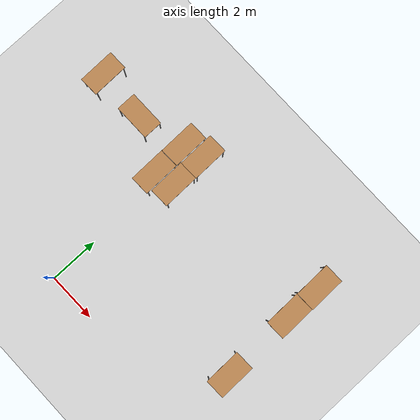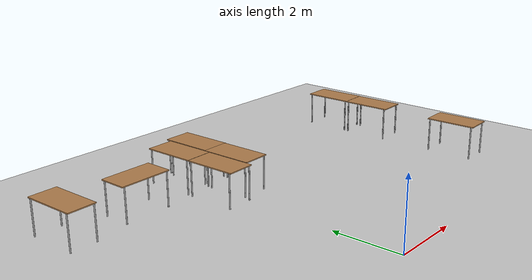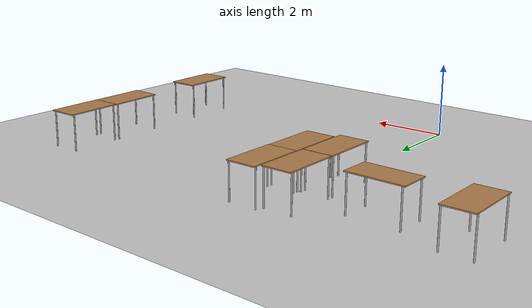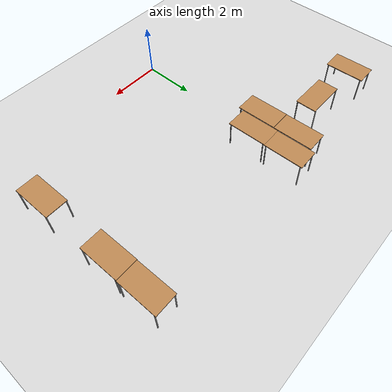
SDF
<sdf version="1.7">
 <world name="default">
  <model name="ground_plane">
   <static>1</static>
   <link name="link">
    <collision name="collision">
     <geometry><plane><normal>0 0 1</normal><size>100 100</size></plane></geometry>
     <surface>
      <contact><collide_bitmask>65535</collide_bitmask></contact>
      <friction><ode><mu>100</mu><mu2>50</mu2></ode></friction>
     </surface>
    </collision>
    <visual name="visual">
     <cast_shadows>0</cast_shadows>
     <geometry><plane><normal>0 0 1</normal><size>100 100</size></plane></geometry>
     <material>
      <script><uri>file://media/materials/scripts/gazebo.material</uri><name>Gazebo/Grey</name></script>
     </material>
    </visual>
   </link>
  </model>
  <model name="table_clone_0">
   <static>1</static>
   <link name="link">
    <collision name="surface">
     <pose>0 0 1 0 -0 0</pose>
     <geometry><box><size>1.5 0.8 0.03</size></box></geometry>
     <surface><friction><ode><mu>0.6</mu><mu2>0.6</mu2></ode></friction></surface>
    </collision>
    <visual name="visual1">
     <pose>0 0 1 0 -0 0</pose>
     <geometry><box><size>1.5 0.8 0.03</size></box></geometry>
     <material>
      <script><uri>file://media/materials/scripts/gazebo.material</uri><name>Gazebo/Wood</name></script>
     </material>
    </visual>
    <collision name="front_left_leg">
     <pose>0.68 0.38 0.5 0 -0 0</pose>
     <geometry><cylinder><radius>0.02</radius><length>1</length></cylinder></geometry>
    </collision>
    <visual name="front_left_leg">
     <pose>0.68 0.38 0.5 0 -0 0</pose>
     <geometry><cylinder><radius>0.02</radius><length>1</length></cylinder></geometry>
     <material>
      <script><uri>file://media/materials/scripts/gazebo.material</uri><name>Gazebo/Grey</name></script>
     </material>
    </visual>
    <collision name="front_right_leg">
     <pose>0.68 -0.38 0.5 0 -0 0</pose>
     <geometry><cylinder><radius>0.02</radius><length>1</length></cylinder></geometry>
    </collision>
    <visual name="front_right_leg">
     <pose>0.68 -0.38 0.5 0 -0 0</pose>
     <geometry><cylinder><radius>0.02</radius><length>1</length></cylinder></geometry>
     <material>
      <script><uri>file://media/materials/scripts/gazebo.material</uri><name>Gazebo/Grey</name></script>
     </material>
    </visual>
    <collision name="back_right_leg">
     <pose>-0.68 -0.38 0.5 0 -0 0</pose>
     <geometry><cylinder><radius>0.02</radius><length>1</length></cylinder></geometry>
    </collision>
    <visual name="back_right_leg">
     <pose>-0.68 -0.38 0.5 0 -0 0</pose>
     <geometry><cylinder><radius>0.02</radius><length>1</length></cylinder></geometry>
     <material>
      <script><uri>file://media/materials/scripts/gazebo.material</uri><name>Gazebo/Grey</name></script>
     </material>
    </visual>
    <collision name="back_left_leg">
     <pose>-0.68 0.38 0.5 0 -0 0</pose>
     <geometry><cylinder><radius>0.02</radius><length>1</length></cylinder></geometry>
    </collision>
    <visual name="back_left_leg">
     <pose>-0.68 0.38 0.5 0 -0 0</pose>
     <geometry><cylinder><radius>0.02</radius><length>1</length></cylinder></geometry>
     <material>
      <script><uri>file://media/materials/scripts/gazebo.material</uri><name>Gazebo/Grey</name></script>
     </material>
    </visual>
   </link>
   <pose>-2.21488 6.47115 0 0 -0 0</pose>
  </model>
  <model name="table_clone_0_clone_0">
   <static>1</static>
   <link name="link">
    <collision name="surface">
     <pose>0 0 1 0 -0 0</pose>
     <geometry><box><size>1.5 0.8 0.03</size></box></geometry>
     <surface><friction><ode><mu>0.6</mu><mu2>0.6</mu2></ode></friction></surface>
    </collision>
    <visual name="visual1">
     <pose>0 0 1 0 -0 0</pose>
     <geometry><box><size>1.5 0.8 0.03</size></box></geometry>
     <material>
      <script><uri>file://media/materials/scripts/gazebo.material</uri><name>Gazebo/Wood</name></script>
     </material>
    </visual>
    <collision name="front_left_leg">
     <pose>0.68 0.38 0.5 0 -0 0</pose>
     <geometry><cylinder><radius>0.02</radius><length>1</length></cylinder></geometry>
    </collision>
    <visual name="front_left_leg">
     <pose>0.68 0.38 0.5 0 -0 0</pose>
     <geometry><cylinder><radius>0.02</radius><length>1</length></cylinder></geometry>
     <material>
      <script><uri>file://media/materials/scripts/gazebo.material</uri><name>Gazebo/Grey</name></script>
     </material>
    </visual>
    <collision name="front_right_leg">
     <pose>0.68 -0.38 0.5 0 -0 0</pose>
     <geometry><cylinder><radius>0.02</radius><length>1</length></cylinder></geometry>
    </collision>
    <visual name="front_right_leg">
     <pose>0.68 -0.38 0.5 0 -0 0</pose>
     <geometry><cylinder><radius>0.02</radius><length>1</length></cylinder></geometry>
     <material>
      <script><uri>file://media/materials/scripts/gazebo.material</uri><name>Gazebo/Grey</name></script>
     </material>
    </visual>
    <collision name="back_right_leg">
     <pose>-0.68 -0.38 0.5 0 -0 0</pose>
     <geometry><cylinder><radius>0.02</radius><length>1</length></cylinder></geometry>
    </collision>
    <visual name="back_right_leg">
     <pose>-0.68 -0.38 0.5 0 -0 0</pose>
     <geometry><cylinder><radius>0.02</radius><length>1</length></cylinder></geometry>
     <material>
      <script><uri>file://media/materials/scripts/gazebo.material</uri><name>Gazebo/Grey</name></script>
     </material>
    </visual>
    <collision name="back_left_leg">
     <pose>-0.68 0.38 0.5 0 -0 0</pose>
     <geometry><cylinder><radius>0.02</radius><length>1</length></cylinder></geometry>
    </collision>
    <visual name="back_left_leg">
     <pose>-0.68 0.38 0.5 0 -0 0</pose>
     <geometry><cylinder><radius>0.02</radius><length>1</length></cylinder></geometry>
     <material>
      <script><uri>file://media/materials/scripts/gazebo.material</uri><name>Gazebo/Grey</name></script>
     </material>
    </visual>
   </link>
   <pose>-4.33016 6.56363 0 0 -0 1.58908</pose>
  </model>
  <model name="table_clone_0_clone_clone">
   <static>1</static>
   <link name="link">
    <collision name="surface">
     <pose>0 0 1 0 -0 0</pose>
     <geometry><box><size>1.5 0.8 0.03</size></box></geometry>
     <surface><friction><ode><mu>0.6</mu><mu2>0.6</mu2></ode></friction></surface>
    </collision>
    <visual name="visual1">
     <pose>0 0 1 0 -0 0</pose>
     <geometry><box><size>1.5 0.8 0.03</size></box></geometry>
     <material>
      <script><uri>file://media/materials/scripts/gazebo.material</uri><name>Gazebo/Wood</name></script>
     </material>
    </visual>
    <collision name="front_left_leg">
     <pose>0.68 0.38 0.5 0 -0 0</pose>
     <geometry><cylinder><radius>0.02</radius><length>1</length></cylinder></geometry>
    </collision>
    <visual name="front_left_leg">
     <pose>0.68 0.38 0.5 0 -0 0</pose>
     <geometry><cylinder><radius>0.02</radius><length>1</length></cylinder></geometry>
     <material>
      <script><uri>file://media/materials/scripts/gazebo.material</uri><name>Gazebo/Grey</name></script>
     </material>
    </visual>
    <collision name="front_right_leg">
     <pose>0.68 -0.38 0.5 0 -0 0</pose>
     <geometry><cylinder><radius>0.02</radius><length>1</length></cylinder></geometry>
    </collision>
    <visual name="front_right_leg">
     <pose>0.68 -0.38 0.5 0 -0 0</pose>
     <geometry><cylinder><radius>0.02</radius><length>1</length></cylinder></geometry>
     <material>
      <script><uri>file://media/materials/scripts/gazebo.material</uri><name>Gazebo/Grey</name></script>
     </material>
    </visual>
    <collision name="back_right_leg">
     <pose>-0.68 -0.38 0.5 0 -0 0</pose>
     <geometry><cylinder><radius>0.02</radius><length>1</length></cylinder></geometry>
    </collision>
    <visual name="back_right_leg">
     <pose>-0.68 -0.38 0.5 0 -0 0</pose>
     <geometry><cylinder><radius>0.02</radius><length>1</length></cylinder></geometry>
     <material>
      <script><uri>file://media/materials/scripts/gazebo.material</uri><name>Gazebo/Grey</name></script>
     </material>
    </visual>
    <collision name="back_left_leg">
     <pose>-0.68 0.38 0.5 0 -0 0</pose>
     <geometry><cylinder><radius>0.02</radius><length>1</length></cylinder></geometry>
    </collision>
    <visual name="back_left_leg">
     <pose>-0.68 0.38 0.5 0 -0 0</pose>
     <geometry><cylinder><radius>0.02</radius><length>1</length></cylinder></geometry>
     <material>
      <script><uri>file://media/materials/scripts/gazebo.material</uri><name>Gazebo/Grey</name></script>
     </material>
    </visual>
   </link>
   <pose>-0.295656 6.95966 0 0 -0 1.58908</pose>
  </model>
  <model name="table_clone_0_clone_clone_0">
   <static>1</static>
   <link name="link">
    <collision name="surface">
     <pose>0 0 1 0 -0 0</pose>
     <geometry><box><size>1.5 0.8 0.03</size></box></geometry>
     <surface><friction><ode><mu>0.6</mu><mu2>0.6</mu2></ode></friction></surface>
    </collision>
    <visual name="visual1">
     <pose>0 0 1 0 -0 0</pose>
     <geometry><box><size>1.5 0.8 0.03</size></box></geometry>
     <material>
      <script><uri>file://media/materials/scripts/gazebo.material</uri><name>Gazebo/Wood</name></script>
     </material>
    </visual>
    <collision name="front_left_leg">
     <pose>0.68 0.38 0.5 0 -0 0</pose>
     <geometry><cylinder><radius>0.02</radius><length>1</length></cylinder></geometry>
    </collision>
    <visual name="front_left_leg">
     <pose>0.68 0.38 0.5 0 -0 0</pose>
     <geometry><cylinder><radius>0.02</radius><length>1</length></cylinder></geometry>
     <material>
      <script><uri>file://media/materials/scripts/gazebo.material</uri><name>Gazebo/Grey</name></script>
     </material>
    </visual>
    <collision name="front_right_leg">
     <pose>0.68 -0.38 0.5 0 -0 0</pose>
     <geometry><cylinder><radius>0.02</radius><length>1</length></cylinder></geometry>
    </collision>
    <visual name="front_right_leg">
     <pose>0.68 -0.38 0.5 0 -0 0</pose>
     <geometry><cylinder><radius>0.02</radius><length>1</length></cylinder></geometry>
     <material>
      <script><uri>file://media/materials/scripts/gazebo.material</uri><name>Gazebo/Grey</name></script>
     </material>
    </visual>
    <collision name="back_right_leg">
     <pose>-0.68 -0.38 0.5 0 -0 0</pose>
     <geometry><cylinder><radius>0.02</radius><length>1</length></cylinder></geometry>
    </collision>
    <visual name="back_right_leg">
     <pose>-0.68 -0.38 0.5 0 -0 0</pose>
     <geometry><cylinder><radius>0.02</radius><length>1</length></cylinder></geometry>
     <material>
      <script><uri>file://media/materials/scripts/gazebo.material</uri><name>Gazebo/Grey</name></script>
     </material>
    </visual>
    <collision name="back_left_leg">
     <pose>-0.68 0.38 0.5 0 -0 0</pose>
     <geometry><cylinder><radius>0.02</radius><length>1</length></cylinder></geometry>
    </collision>
    <visual name="back_left_leg">
     <pose>-0.68 0.38 0.5 0 -0 0</pose>
     <geometry><cylinder><radius>0.02</radius><length>1</length></cylinder></geometry>
     <material>
      <script><uri>file://media/materials/scripts/gazebo.material</uri><name>Gazebo/Grey</name></script>
     </material>
    </visual>
   </link>
   <pose>-0.274415 5.44749 0 0 -0 1.58908</pose>
  </model>
  <model name="table_clone_0_clone_clone_clone">
   <static>1</static>
   <link name="link">
    <collision name="surface">
     <pose>0 0 1 0 -0 0</pose>
     <geometry><box><size>1.5 0.8 0.03</size></box></geometry>
     <surface><friction><ode><mu>0.6</mu><mu2>0.6</mu2></ode></friction></surface>
    </collision>
    <visual name="visual1">
     <pose>0 0 1 0 -0 0</pose>
     <geometry><box><size>1.5 0.8 0.03</size></box></geometry>
     <material>
      <script><uri>file://media/materials/scripts/gazebo.material</uri><name>Gazebo/Wood</name></script>
     </material>
    </visual>
    <collision name="front_left_leg">
     <pose>0.68 0.38 0.5 0 -0 0</pose>
     <geometry><cylinder><radius>0.02</radius><length>1</length></cylinder></geometry>
    </collision>
    <visual name="front_left_leg">
     <pose>0.68 0.38 0.5 0 -0 0</pose>
     <geometry><cylinder><radius>0.02</radius><length>1</length></cylinder></geometry>
     <material>
      <script><uri>file://media/materials/scripts/gazebo.material</uri><name>Gazebo/Grey</name></script>
     </material>
    </visual>
    <collision name="front_right_leg">
     <pose>0.68 -0.38 0.5 0 -0 0</pose>
     <geometry><cylinder><radius>0.02</radius><length>1</length></cylinder></geometry>
    </collision>
    <visual name="front_right_leg">
     <pose>0.68 -0.38 0.5 0 -0 0</pose>
     <geometry><cylinder><radius>0.02</radius><length>1</length></cylinder></geometry>
     <material>
      <script><uri>file://media/materials/scripts/gazebo.material</uri><name>Gazebo/Grey</name></script>
     </material>
    </visual>
    <collision name="back_right_leg">
     <pose>-0.68 -0.38 0.5 0 -0 0</pose>
     <geometry><cylinder><radius>0.02</radius><length>1</length></cylinder></geometry>
    </collision>
    <visual name="back_right_leg">
     <pose>-0.68 -0.38 0.5 0 -0 0</pose>
     <geometry><cylinder><radius>0.02</radius><length>1</length></cylinder></geometry>
     <material>
      <script><uri>file://media/materials/scripts/gazebo.material</uri><name>Gazebo/Grey</name></script>
     </material>
    </visual>
    <collision name="back_left_leg">
     <pose>-0.68 0.38 0.5 0 -0 0</pose>
     <geometry><cylinder><radius>0.02</radius><length>1</length></cylinder></geometry>
    </collision>
    <visual name="back_left_leg">
     <pose>-0.68 0.38 0.5 0 -0 0</pose>
     <geometry><cylinder><radius>0.02</radius><length>1</length></cylinder></geometry>
     <material>
      <script><uri>file://media/materials/scripts/gazebo.material</uri><name>Gazebo/Grey</name></script>
     </material>
    </visual>
   </link>
   <pose>0.539492 7.15927 0 0 -0 1.58908</pose>
  </model>
  <model name="table_clone_0_clone_clone_clone_0">
   <static>1</static>
   <link name="link">
    <collision name="surface">
     <pose>0 0 1 0 -0 0</pose>
     <geometry><box><size>1.5 0.8 0.03</size></box></geometry>
     <surface><friction><ode><mu>0.6</mu><mu2>0.6</mu2></ode></friction></surface>
    </collision>
    <visual name="visual1">
     <pose>0 0 1 0 -0 0</pose>
     <geometry><box><size>1.5 0.8 0.03</size></box></geometry>
     <material>
      <script><uri>file://media/materials/scripts/gazebo.material</uri><name>Gazebo/Wood</name></script>
     </material>
    </visual>
    <collision name="front_left_leg">
     <pose>0.68 0.38 0.5 0 -0 0</pose>
     <geometry><cylinder><radius>0.02</radius><length>1</length></cylinder></geometry>
    </collision>
    <visual name="front_left_leg">
     <pose>0.68 0.38 0.5 0 -0 0</pose>
     <geometry><cylinder><radius>0.02</radius><length>1</length></cylinder></geometry>
     <material>
      <script><uri>file://media/materials/scripts/gazebo.material</uri><name>Gazebo/Grey</name></script>
     </material>
    </visual>
    <collision name="front_right_leg">
     <pose>0.68 -0.38 0.5 0 -0 0</pose>
     <geometry><cylinder><radius>0.02</radius><length>1</length></cylinder></geometry>
    </collision>
    <visual name="front_right_leg">
     <pose>0.68 -0.38 0.5 0 -0 0</pose>
     <geometry><cylinder><radius>0.02</radius><length>1</length></cylinder></geometry>
     <material>
      <script><uri>file://media/materials/scripts/gazebo.material</uri><name>Gazebo/Grey</name></script>
     </material>
    </visual>
    <collision name="back_right_leg">
     <pose>-0.68 -0.38 0.5 0 -0 0</pose>
     <geometry><cylinder><radius>0.02</radius><length>1</length></cylinder></geometry>
    </collision>
    <visual name="back_right_leg">
     <pose>-0.68 -0.38 0.5 0 -0 0</pose>
     <geometry><cylinder><radius>0.02</radius><length>1</length></cylinder></geometry>
     <material>
      <script><uri>file://media/materials/scripts/gazebo.material</uri><name>Gazebo/Grey</name></script>
     </material>
    </visual>
    <collision name="back_left_leg">
     <pose>-0.68 0.38 0.5 0 -0 0</pose>
     <geometry><cylinder><radius>0.02</radius><length>1</length></cylinder></geometry>
    </collision>
    <visual name="back_left_leg">
     <pose>-0.68 0.38 0.5 0 -0 0</pose>
     <geometry><cylinder><radius>0.02</radius><length>1</length></cylinder></geometry>
     <material>
      <script><uri>file://media/materials/scripts/gazebo.material</uri><name>Gazebo/Grey</name></script>
     </material>
    </visual>
   </link>
   <pose>0.553868 5.6672 0 0 -0 1.58908</pose>
  </model>
  <model name="table_clone_0_clone_1">
   <static>1</static>
   <link name="link">
    <collision name="surface">
     <pose>0 0 1 0 -0 0</pose>
     <geometry><box><size>1.5 0.8 0.03</size></box></geometry>
     <surface><friction><ode><mu>0.6</mu><mu2>0.6</mu2></ode></friction></surface>
    </collision>
    <visual name="visual1">
     <pose>0 0 1 0 -0 0</pose>
     <geometry><box><size>1.5 0.8 0.03</size></box></geometry>
     <material>
      <script><uri>file://media/materials/scripts/gazebo.material</uri><name>Gazebo/Wood</name></script>
     </material>
    </visual>
    <collision name="front_left_leg">
     <pose>0.68 0.38 0.5 0 -0 0</pose>
     <geometry><cylinder><radius>0.02</radius><length>1</length></cylinder></geometry>
    </collision>
    <visual name="front_left_leg">
     <pose>0.68 0.38 0.5 0 -0 0</pose>
     <geometry><cylinder><radius>0.02</radius><length>1</length></cylinder></geometry>
     <material>
      <script><uri>file://media/materials/scripts/gazebo.material</uri><name>Gazebo/Grey</name></script>
     </material>
    </visual>
    <collision name="front_right_leg">
     <pose>0.68 -0.38 0.5 0 -0 0</pose>
     <geometry><cylinder><radius>0.02</radius><length>1</length></cylinder></geometry>
    </collision>
    <visual name="front_right_leg">
     <pose>0.68 -0.38 0.5 0 -0 0</pose>
     <geometry><cylinder><radius>0.02</radius><length>1</length></cylinder></geometry>
     <material>
      <script><uri>file://media/materials/scripts/gazebo.material</uri><name>Gazebo/Grey</name></script>
     </material>
    </visual>
    <collision name="back_right_leg">
     <pose>-0.68 -0.38 0.5 0 -0 0</pose>
     <geometry><cylinder><radius>0.02</radius><length>1</length></cylinder></geometry>
    </collision>
    <visual name="back_right_leg">
     <pose>-0.68 -0.38 0.5 0 -0 0</pose>
     <geometry><cylinder><radius>0.02</radius><length>1</length></cylinder></geometry>
     <material>
      <script><uri>file://media/materials/scripts/gazebo.material</uri><name>Gazebo/Grey</name></script>
     </material>
    </visual>
    <collision name="back_left_leg">
     <pose>-0.68 0.38 0.5 0 -0 0</pose>
     <geometry><cylinder><radius>0.02</radius><length>1</length></cylinder></geometry>
    </collision>
    <visual name="back_left_leg">
     <pose>-0.68 0.38 0.5 0 -0 0</pose>
     <geometry><cylinder><radius>0.02</radius><length>1</length></cylinder></geometry>
     <material>
      <script><uri>file://media/materials/scripts/gazebo.material</uri><name>Gazebo/Grey</name></script>
     </material>
    </visual>
   </link>
   <pose>6.94327 6.99918 0 0 -0 1.58908</pose>
  </model>
  <model name="table_clone_0_clone_2">
   <static>1</static>
   <link name="link">
    <collision name="surface">
     <pose>0 0 1 0 -0 0</pose>
     <geometry><box><size>1.5 0.8 0.03</size></box></geometry>
     <surface><friction><ode><mu>0.6</mu><mu2>0.6</mu2></ode></friction></surface>
    </collision>
    <visual name="visual1">
     <pose>0 0 1 0 -0 0</pose>
     <geometry><box><size>1.5 0.8 0.03</size></box></geometry>
     <material>
      <script><uri>file://media/materials/scripts/gazebo.material</uri><name>Gazebo/Wood</name></script>
     </material>
    </visual>
    <collision name="front_left_leg">
     <pose>0.68 0.38 0.5 0 -0 0</pose>
     <geometry><cylinder><radius>0.02</radius><length>1</length></cylinder></geometry>
    </collision>
    <visual name="front_left_leg">
     <pose>0.68 0.38 0.5 0 -0 0</pose>
     <geometry><cylinder><radius>0.02</radius><length>1</length></cylinder></geometry>
     <material>
      <script><uri>file://media/materials/scripts/gazebo.material</uri><name>Gazebo/Grey</name></script>
     </material>
    </visual>
    <collision name="front_right_leg">
     <pose>0.68 -0.38 0.5 0 -0 0</pose>
     <geometry><cylinder><radius>0.02</radius><length>1</length></cylinder></geometry>
    </collision>
    <visual name="front_right_leg">
     <pose>0.68 -0.38 0.5 0 -0 0</pose>
     <geometry><cylinder><radius>0.02</radius><length>1</length></cylinder></geometry>
     <material>
      <script><uri>file://media/materials/scripts/gazebo.material</uri><name>Gazebo/Grey</name></script>
     </material>
    </visual>
    <collision name="back_right_leg">
     <pose>-0.68 -0.38 0.5 0 -0 0</pose>
     <geometry><cylinder><radius>0.02</radius><length>1</length></cylinder></geometry>
    </collision>
    <visual name="back_right_leg">
     <pose>-0.68 -0.38 0.5 0 -0 0</pose>
     <geometry><cylinder><radius>0.02</radius><length>1</length></cylinder></geometry>
     <material>
      <script><uri>file://media/materials/scripts/gazebo.material</uri><name>Gazebo/Grey</name></script>
     </material>
    </visual>
    <collision name="back_left_leg">
     <pose>-0.68 0.38 0.5 0 -0 0</pose>
     <geometry><cylinder><radius>0.02</radius><length>1</length></cylinder></geometry>
    </collision>
    <visual name="back_left_leg">
     <pose>-0.68 0.38 0.5 0 -0 0</pose>
     <geometry><cylinder><radius>0.02</radius><length>1</length></cylinder></geometry>
     <material>
      <script><uri>file://media/materials/scripts/gazebo.material</uri><name>Gazebo/Grey</name></script>
     </material>
    </visual>
   </link>
   <pose>6.95814 5.4935 0 0 -0 1.58908</pose>
  </model>
  <model name="table_clone_0_clone_4">
   <static>1</static>
   <link name="link">
    <collision name="surface">
     <pose>0 0 1 0 -0 0</pose>
     <geometry><box><size>1.5 0.8 0.03</size></box></geometry>
     <surface><friction><ode><mu>0.6</mu><mu2>0.6</mu2></ode></friction></surface>
    </collision>
    <visual name="visual1">
     <pose>0 0 1 0 -0 0</pose>
     <geometry><box><size>1.5 0.8 0.03</size></box></geometry>
     <material>
      <script><uri>file://media/materials/scripts/gazebo.material</uri><name>Gazebo/Wood</name></script>
     </material>
    </visual>
    <collision name="front_left_leg">
     <pose>0.68 0.38 0.5 0 -0 0</pose>
     <geometry><cylinder><radius>0.02</radius><length>1</length></cylinder></geometry>
    </collision>
    <visual name="front_left_leg">
     <pose>0.68 0.38 0.5 0 -0 0</pose>
     <geometry><cylinder><radius>0.02</radius><length>1</length></cylinder></geometry>
     <material>
      <script><uri>file://media/materials/scripts/gazebo.material</uri><name>Gazebo/Grey</name></script>
     </material>
    </visual>
    <collision name="front_right_leg">
     <pose>0.68 -0.38 0.5 0 -0 0</pose>
     <geometry><cylinder><radius>0.02</radius><length>1</length></cylinder></geometry>
    </collision>
    <visual name="front_right_leg">
     <pose>0.68 -0.38 0.5 0 -0 0</pose>
     <geometry><cylinder><radius>0.02</radius><length>1</length></cylinder></geometry>
     <material>
      <script><uri>file://media/materials/scripts/gazebo.material</uri><name>Gazebo/Grey</name></script>
     </material>
    </visual>
    <collision name="back_right_leg">
     <pose>-0.68 -0.38 0.5 0 -0 0</pose>
     <geometry><cylinder><radius>0.02</radius><length>1</length></cylinder></geometry>
    </collision>
    <visual name="back_right_leg">
     <pose>-0.68 -0.38 0.5 0 -0 0</pose>
     <geometry><cylinder><radius>0.02</radius><length>1</length></cylinder></geometry>
     <material>
      <script><uri>file://media/materials/scripts/gazebo.material</uri><name>Gazebo/Grey</name></script>
     </material>
    </visual>
    <collision name="back_left_leg">
     <pose>-0.68 0.38 0.5 0 -0 0</pose>
     <geometry><cylinder><radius>0.02</radius><length>1</length></cylinder></geometry>
    </collision>
    <visual name="back_left_leg">
     <pose>-0.68 0.38 0.5 0 -0 0</pose>
     <geometry><cylinder><radius>0.02</radius><length>1</length></cylinder></geometry>
     <material>
      <script><uri>file://media/materials/scripts/gazebo.material</uri><name>Gazebo/Grey</name></script>
     </material>
    </visual>
   </link>
   <pose>7.01065 2.4699 0 0 -0 1.58908</pose>
  </model>
  <model name="Construction Cone_clone_0">
   <pose>-3.59319 2.08627 -0 -0 -0 -0</pose>
   <scale>1 1 1</scale>
   <link name="link">
    <pose>-3.59319 2.08627 -0 -0 -0 -0</pose>
    <velocity>0 0 0 0 -0 0</velocity>
    <acceleration>-0 0 0.198217 -0.145923 -0.686488 0</acceleration>
    <wrench>-0 0 0.198217 0 -0 0</wrench>
   </link>
  </model>
  <model name="OfficeChairBlue_clone_clone_clone">
   <pose>-1.11448 5.51259 0 0 0 -1.55353</pose>
   <scale>1 1 1</scale>
   <link name="body">
    <pose>-1.11448 5.51259 0 0 0 -1.55353</pose>
    <velocity>0 0 0 0 -0 0</velocity>
    <acceleration>0 0 0 0 -0 0</acceleration>
    <wrench>0 0 0 0 -0 0</wrench>
   </link>
  </model>
  <model name="OfficeChairGrey_clone">
   <pose>5.99631 7.20437 0 0 -0 0</pose>
   <scale>1 1 1</scale>
   <link name="body">
    <pose>5.99631 7.20437 0 0 -0 0</pose>
    <velocity>0 0 0 0 -0 0</velocity>
    <acceleration>0 0 0 0 -0 0</acceleration>
    <wrench>0 0 0 0 -0 0</wrench>
   </link>
  </model>
  <model name="OfficeChairGrey_clone_0">
   <pose>5.90446 6.03287 0 0 -0 0</pose>
   <scale>1 1 1</scale>
   <link name="body">
    <pose>5.90446 6.03287 0 0 -0 0</pose>
    <velocity>0 0 0 0 -0 0</velocity>
    <acceleration>0 0 0 0 -0 0</acceleration>
    <wrench>0 0 0 0 -0 0</wrench>
   </link>
  </model>
  <model name="TrolleyBox1_0_clone">
   <pose>4.46703 5.80821 0 0 -0 3.13457</pose>
   <scale>1 1 1</scale>
   <link name="body">
    <pose>4.46703 5.80821 0 0 -0 3.13457</pose>
    <velocity>0 0 0 0 -0 0</velocity>
    <acceleration>0 0 0 0 -0 0</acceleration>
    <wrench>0 0 0 0 -0 0</wrench>
   </link>
  </model>
  <model name="WhiteCabinet_clone_0_clone">
   <pose>-7.11235 4.69286 0 0 -0 1.55539</pose>
   <scale>1 1 1</scale>
   <link name="body">
    <pose>-7.11235 4.69286 0 0 -0 1.55539</pose>
    <velocity>0 0 0 0 -0 0</velocity>
    <acceleration>0 0 0 0 -0 0</acceleration>
    <wrench>0 0 0 0 -0 0</wrench>
   </link>
  </model>
  <model name="WhiteCabinet_clone_0_clone_0">
   <pose>-7.11163 5.62397 0 0 -0 1.55539</pose>
   <scale>1 1 1</scale>
   <link name="body">
    <pose>-7.11163 5.62397 0 0 -0 1.55539</pose>
    <velocity>0 0 0 0 -0 0</velocity>
    <acceleration>0 0 0 0 -0 0</acceleration>
    <wrench>0 0 0 0 -0 0</wrench>
   </link>
  </model>
  <model name="WhiteCabinet_clone_0_clone_1">
   <pose>-7.08166 6.53433 0 0 -0 1.55539</pose>
   <scale>1 1 1</scale>
   <link name="body">
    <pose>-7.08166 6.53433 0 0 -0 1.55539</pose>
    <velocity>0 0 0 0 -0 0</velocity>
    <acceleration>0 0 0 0 -0 0</acceleration>
    <wrench>0 0 0 0 -0 0</wrench>
   </link>
  </model>
  <model name="WhiteCabinet_clone_0_clone_2">
   <pose>-7.07498 7.43764 0 0 -0 1.55539</pose>
   <scale>1 1 1</scale>
   <link name="body">
    <pose>-7.07498 7.43764 0 0 -0 1.55539</pose>
    <velocity>0 0 0 0 -0 0</velocity>
    <acceleration>0 0 0 0 -0 0</acceleration>
    <wrench>0 0 0 0 -0 0</wrench>
   </link>
  </model>
  <model name="WhiteCabinet_clone_0_clone_3">
   <pose>-4.19379 1.69193 0 0 -0 1.55539</pose>
   <scale>1 1 1</scale>
   <link name="body">
    <pose>-4.19379 1.69193 0 0 -0 1.55539</pose>
    <velocity>0 0 0 0 -0 0</velocity>
    <acceleration>0 0 0 0 -0 0</acceleration>
    <wrench>0 0 0 0 -0 0</wrench>
   </link>
  </model>
  <model name="WhiteCabinet_clone_0_clone_6_clone_0_clone_clone_1_clone_1">
   <pose>-4.87818 1.87641 0 0 0 -1.55703</pose>
   <scale>1 1 1</scale>
   <link name="body">
    <pose>-4.87818 1.87641 0 0 0 -1.55703</pose>
    <velocity>0 0 0 0 -0 0</velocity>
    <acceleration>0 0 0 0 -0 0</acceleration>
    <wrench>0 0 0 0 -0 0</wrench>
   </link>
  </model>
  <model name="WhiteCabinet_clone_clone">
   <pose>-5.75891 7.41066 0 0 0 -1.51839</pose>
   <scale>1 1 1</scale>
   <link name="body">
    <pose>-5.75891 7.41066 0 0 0 -1.51839</pose>
    <velocity>0 0 0 0 -0 0</velocity>
    <acceleration>0 0 0 0 -0 0</acceleration>
    <wrench>0 0 0 0 -0 0</wrench>
   </link>
  </model>
  <model name="WhiteCabinet_clone_clone_0">
   <pose>-5.66151 5.53968 0 0 0 -1.51839</pose>
   <scale>1 1 1</scale>
   <link name="body">
    <pose>-5.66151 5.53968 0 0 0 -1.51839</pose>
    <velocity>0 0 0 0 -0 0</velocity>
    <acceleration>0 0 0 0 -0 0</acceleration>
    <wrench>0 0 0 0 -0 0</wrench>
   </link>
  </model>
  <model name="cardboard_box_2">
   <pose>-4.88373 2.96722 -1.0418e+07 0 -0 0</pose>
   <scale>1 1 1</scale>
   <link name="link">
    <pose>-9.76746 5.93444 -1.0418e+07 0 -0 0</pose>
    <velocity>0 0 -14289.6 0 -0 0</velocity>
    <acceleration>0 0 -9.8 0 -0 0</acceleration>
    <wrench>0 0 -9.8 0 -0 0</wrench>
   </link>
  </model>
  <model name="cardboard_box_3">
   <pose>-0.0158 3.98725 -1.0418e+07 2e-06 -2e-06 -0</pose>
   <scale>1 1 1</scale>
   <link name="link">
    <pose>-0.0316 7.9745 -1.0418e+07 4e-06 -4e-06 0</pose>
    <velocity>0 0 -14289.6 0 -0 0</velocity>
    <acceleration>0 0 -9.8 0 -0 0</acceleration>
    <wrench>0 0 -9.8 0 -0 0</wrench>
   </link>
  </model>
  <model name="rcboat">
   <pose>3.54814 6.02814 0 0 -0 0</pose>
   <scale>1 1 1</scale>
   <link name="base_link">
    <pose>3.54814 6.02814 0 0 -0 0</pose>
    <velocity>0 0 0 0 -0 0</velocity>
    <acceleration>0 0 0 0 -0 0</acceleration>
    <wrench>0 0 0 0 -0 0</wrench>
   </link>
  </model>
 </world>
</sdf>
